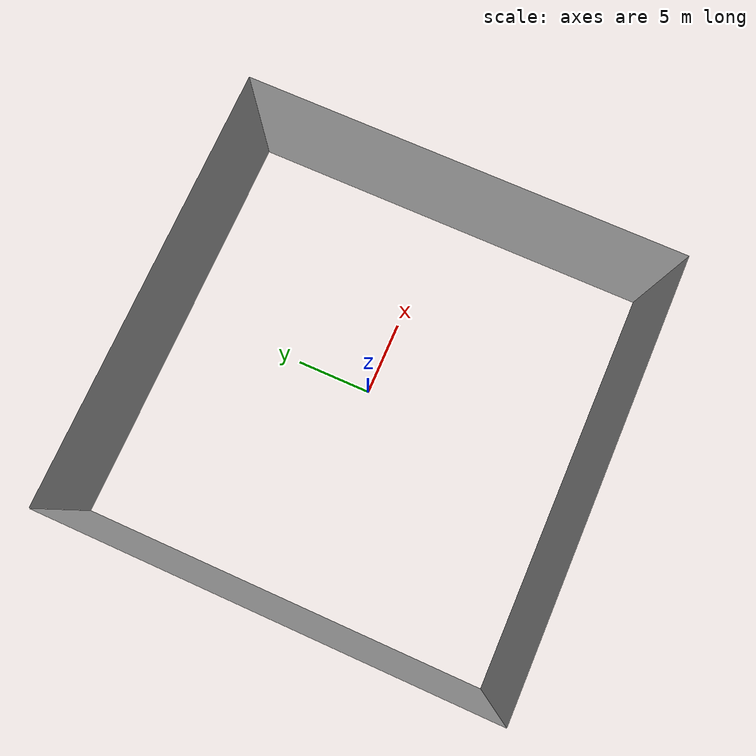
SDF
<sdf version="1.5">
 <world name="default">
  <include><uri>model://sun</uri></include>
  <spherical_coordinates>
   <surface_model>EARTH_WGS84</surface_model>
   <latitude_deg>47.333439</latitude_deg>
   <longitude_deg>8.547097</longitude_deg>
   <elevation>1.7</elevation>
  </spherical_coordinates>
  <physics name="default_physics" default="0" type="ode">
   <gravity>0 0 -9.8066</gravity>
   <ode>
    <solver>
     <type>quick</type>
     <iters>10</iters>
     <sor>1.3</sor>
     <use_dynamic_moi_rescaling>0</use_dynamic_moi_rescaling>
    </solver>
    <constraints>
     <cfm>0</cfm>
     <erp>0.2</erp>
     <contact_max_correcting_vel>100</contact_max_correcting_vel>
     <contact_surface_layer>0.001</contact_surface_layer>
    </constraints>
   </ode>
   <max_step_size>0.004</max_step_size>
   <real_time_factor>1</real_time_factor>
   <real_time_update_rate>250</real_time_update_rate>
   <magnetic_field>6.0e-6 2.3e-5 -4.2e-5</magnetic_field>
  </physics>
  <model name="wall1">
   <pose>15 0 0 0 1.57 0</pose>
   <static>true</static>
   <link name="wall_link">
    <collision name="wall_collision">
     <geometry><box><size>10 30 0</size></box></geometry>
     <surface><contact><collide_without_contact>false</collide_without_contact></contact></surface>
    </collision>
    <visual name="wall_visual">
     <geometry><box><size>10 30 0</size></box></geometry>
     <material><ambient>0.5 0.5 0.5 1</ambient><diffuse>0.7 0.7 0.7 1</diffuse></material>
    </visual>
   </link>
  </model>
  <model name="wall2">
   <pose>-15 0 0 0 1.57 0</pose>
   <static>true</static>
   <link name="wall_link">
    <collision name="wall_collision">
     <geometry><box><size>10 30 0</size></box></geometry>
     <surface><contact><collide_without_contact>false</collide_without_contact></contact></surface>
    </collision>
    <visual name="wall_visual">
     <geometry><box><size>10 30 0</size></box></geometry>
     <material><ambient>0.5 0.5 0.5 1</ambient><diffuse>0.7 0.7 0.7 1</diffuse></material>
    </visual>
   </link>
  </model>
  <model name="wall3">
   <pose>0 15 0 0 1.57 1.57</pose>
   <static>true</static>
   <link name="wall_link">
    <collision name="wall_collision">
     <geometry><box><size>10 30 0</size></box></geometry>
     <surface><contact><collide_without_contact>false</collide_without_contact></contact></surface>
    </collision>
    <visual name="wall_visual">
     <geometry><box><size>10 30 0</size></box></geometry>
     <material><ambient>0.5 0.5 0.5 1</ambient><diffuse>0.7 0.7 0.7 1</diffuse></material>
    </visual>
   </link>
  </model>
  <model name="wall4">
   <pose>0 -15 0 0 1.57 1.57</pose>
   <static>true</static>
   <link name="wall_link">
    <collision name="wall_collision">
     <geometry><box><size>10 30 0</size></box></geometry>
     <surface><contact><collide_without_contact>false</collide_without_contact></contact></surface>
    </collision>
    <visual name="wall_visual">
     <geometry><box><size>10 30 0</size></box></geometry>
     <material><ambient>0.5 0.5 0.5 1</ambient><diffuse>0.7 0.7 0.7 1</diffuse></material>
    </visual>
   </link>
  </model>
 </world>
</sdf>
